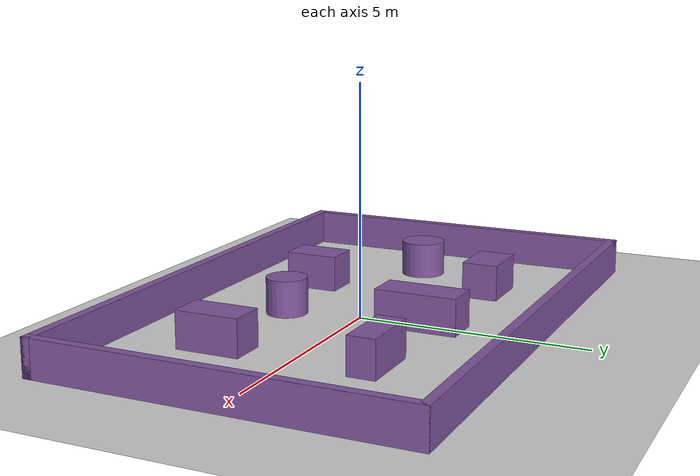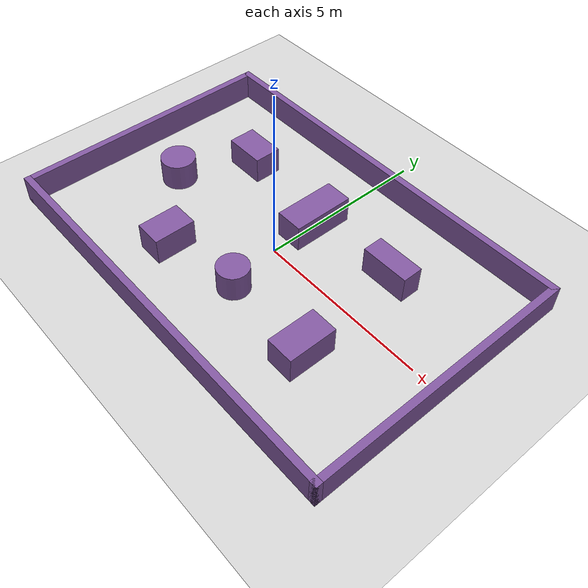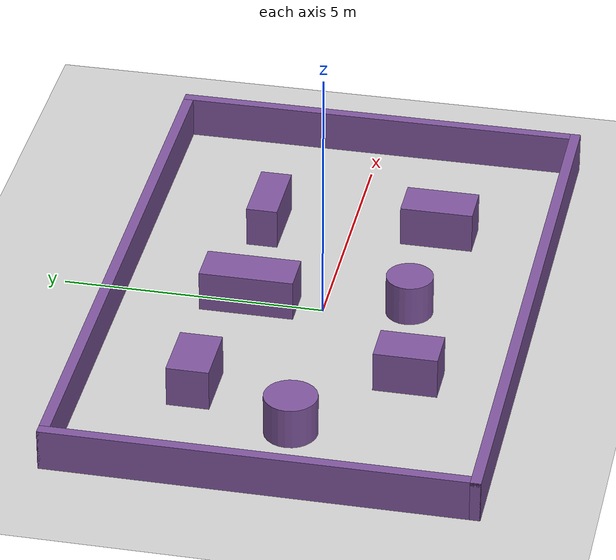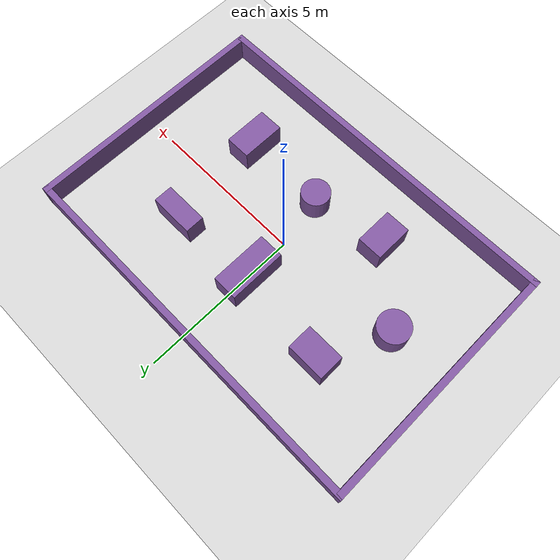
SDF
<?xml version="1.0"?>
<sdf version="1.8">
  <world name="obstacle_course">
    <physics name="accurate_1ms" type="ode">
      <real_time_update_rate>1000.0</real_time_update_rate>
      <max_step_size>0.001</max_step_size>
      <real_time_factor>1.0</real_time_factor>
      <ode>
        <solver>
          <type>quick</type>
          <iters>150</iters>
          <sor>1.4</sor>
          <use_dynamic_moi_rescaling>true</use_dynamic_moi_rescaling>
        </solver>
        <constraints>
          <cfm>0.00001</cfm>
          <erp>0.2</erp>
          <contact_max_correcting_vel>2000.0</contact_max_correcting_vel>
          <contact_surface_layer>0.01</contact_surface_layer>
        </constraints>
      </ode>
    </physics>

    <plugin filename="gz-sim-physics-system"
            name="gz::sim::systems::Physics"/>
    <plugin filename="gz-sim-user-commands-system"
            name="gz::sim::systems::UserCommands"/>
    <plugin filename="gz-sim-scene-broadcaster-system"
            name="gz::sim::systems::SceneBroadcaster"/>
    <plugin filename="gz-sim-sensors-system"
            name="gz::sim::systems::Sensors">
      <render_engine>ogre2</render_engine>
    </plugin>
    <plugin filename="gz-sim-imu-system"
            name="gz::sim::systems::Imu"/>

    <gravity>0 0 -9.8</gravity>
    <scene>
      <ambient>0.7 0.7 0.7 1</ambient>
      <background>0.85 0.9 0.95 1</background>
      <shadows>true</shadows>
    </scene>
    <light name="sun" type="directional">
      <cast_shadows>true</cast_shadows>
      <pose>0 0 10 0 0 0</pose>
      <diffuse>0.9 0.9 0.9 1</diffuse>
      <specular>0.2 0.2 0.2 1</specular>
      <direction>-0.5 0.2 -0.9</direction>
    </light>

    <model name="ground_plane">
      <static>true</static>
      <link name="ground_link">
        <collision name="ground_collision">
          <geometry>
            <plane>
              <normal>0 0 1</normal>
              <size>12 8</size>
            </plane>
          </geometry>
          <surface>
            <friction><ode><mu>1.0</mu><mu2>1.0</mu2></ode></friction>
          </surface>
        </collision>
        <visual name="ground_visual">
          <geometry>
            <plane>
              <normal>0 0 1</normal>
              <size>12 8</size>
            </plane>
          </geometry>
          <material>
            <ambient>0.72 0.72 0.72 1</ambient>
            <diffuse>0.82 0.82 0.82 1</diffuse>
          </material>
        </visual>
      </link>
    </model>

    <model name="arena_geometry">
      <static>true</static>
      <link name="geometry_link">
      <collision name="north_wall_collision">
        <pose>0 3.9 0.4 0 0 0</pose>
        <geometry><box><size>12 0.2 0.8</size></box></geometry>
      </collision>
      <visual name="north_wall_visual">
        <pose>0 3.9 0.4 0 0 0</pose>
        <geometry><box><size>12 0.2 0.8</size></box></geometry>
        <material>
          <ambient>0.5 0.34 0.62 1</ambient>
          <diffuse>0.5 0.34 0.62 1</diffuse>
        </material>
      </visual>
      <collision name="south_wall_collision">
        <pose>0 -3.9 0.4 0 0 0</pose>
        <geometry><box><size>12 0.2 0.8</size></box></geometry>
      </collision>
      <visual name="south_wall_visual">
        <pose>0 -3.9 0.4 0 0 0</pose>
        <geometry><box><size>12 0.2 0.8</size></box></geometry>
        <material>
          <ambient>0.5 0.34 0.62 1</ambient>
          <diffuse>0.5 0.34 0.62 1</diffuse>
        </material>
      </visual>
      <collision name="east_wall_collision">
        <pose>5.9 0 0.4 0 0 0</pose>
        <geometry><box><size>0.2 8 0.8</size></box></geometry>
      </collision>
      <visual name="east_wall_visual">
        <pose>5.9 0 0.4 0 0 0</pose>
        <geometry><box><size>0.2 8 0.8</size></box></geometry>
        <material>
          <ambient>0.5 0.34 0.62 1</ambient>
          <diffuse>0.5 0.34 0.62 1</diffuse>
        </material>
      </visual>
      <collision name="west_wall_collision">
        <pose>-5.9 0 0.4 0 0 0</pose>
        <geometry><box><size>0.2 8 0.8</size></box></geometry>
      </collision>
      <visual name="west_wall_visual">
        <pose>-5.9 0 0.4 0 0 0</pose>
        <geometry><box><size>0.2 8 0.8</size></box></geometry>
        <material>
          <ambient>0.5 0.34 0.62 1</ambient>
          <diffuse>0.5 0.34 0.62 1</diffuse>
        </material>
      </visual>
      <collision name="northwest_block_collision">
        <pose>-3 1.8 0.4 0 0 0</pose>
        <geometry><box><size>1.2 0.8 0.8</size></box></geometry>
      </collision>
      <visual name="northwest_block_visual">
        <pose>-3 1.8 0.4 0 0 0</pose>
        <geometry><box><size>1.2 0.8 0.8</size></box></geometry>
        <material>
          <ambient>0.5 0.34 0.62 1</ambient>
          <diffuse>0.5 0.34 0.62 1</diffuse>
        </material>
      </visual>
      <collision name="southwest_block_collision">
        <pose>-2 -2 0.4 0 0 0</pose>
        <geometry><box><size>0.8 1.2 0.8</size></box></geometry>
      </collision>
      <visual name="southwest_block_visual">
        <pose>-2 -2 0.4 0 0 0</pose>
        <geometry><box><size>0.8 1.2 0.8</size></box></geometry>
        <material>
          <ambient>0.5 0.34 0.62 1</ambient>
          <diffuse>0.5 0.34 0.62 1</diffuse>
        </material>
      </visual>
      <collision name="north_center_block_collision">
        <pose>0 1.4 0.4 0 0 0</pose>
        <geometry><box><size>0.8 1.8 0.8</size></box></geometry>
      </collision>
      <visual name="north_center_block_visual">
        <pose>0 1.4 0.4 0 0 0</pose>
        <geometry><box><size>0.8 1.8 0.8</size></box></geometry>
        <material>
          <ambient>0.5 0.34 0.62 1</ambient>
          <diffuse>0.5 0.34 0.62 1</diffuse>
        </material>
      </visual>
      <collision name="northeast_block_collision">
        <pose>2.7 1.6 0.4 0 0 0</pose>
        <geometry><box><size>1.4 0.6 0.8</size></box></geometry>
      </collision>
      <visual name="northeast_block_visual">
        <pose>2.7 1.6 0.4 0 0 0</pose>
        <geometry><box><size>1.4 0.6 0.8</size></box></geometry>
        <material>
          <ambient>0.5 0.34 0.62 1</ambient>
          <diffuse>0.5 0.34 0.62 1</diffuse>
        </material>
      </visual>
      <collision name="southeast_block_collision">
        <pose>3 -1.7 0.4 0 0 0</pose>
        <geometry><box><size>0.8 1.4 0.8</size></box></geometry>
      </collision>
      <visual name="southeast_block_visual">
        <pose>3 -1.7 0.4 0 0 0</pose>
        <geometry><box><size>0.8 1.4 0.8</size></box></geometry>
        <material>
          <ambient>0.5 0.34 0.62 1</ambient>
          <diffuse>0.5 0.34 0.62 1</diffuse>
        </material>
      </visual>
      <collision name="south_center_pillar_collision">
        <pose>0.3 -1.6 0.4 0 0 0</pose>
        <geometry>
          <cylinder>
            <radius>0.45</radius>
            <length>0.8</length>
          </cylinder>
        </geometry>
      </collision>
      <visual name="south_center_pillar_visual">
        <pose>0.3 -1.6 0.4 0 0 0</pose>
        <geometry>
          <cylinder>
            <radius>0.45</radius>
            <length>0.8</length>
          </cylinder>
        </geometry>
        <material>
          <ambient>0.5 0.34 0.62 1</ambient>
          <diffuse>0.5 0.34 0.62 1</diffuse>
        </material>
      </visual>
      <collision name="west_pillar_collision">
        <pose>-4 -0.2 0.4 0 0 0</pose>
        <geometry>
          <cylinder>
            <radius>0.5</radius>
            <length>0.8</length>
          </cylinder>
        </geometry>
      </collision>
      <visual name="west_pillar_visual">
        <pose>-4 -0.2 0.4 0 0 0</pose>
        <geometry>
          <cylinder>
            <radius>0.5</radius>
            <length>0.8</length>
          </cylinder>
        </geometry>
        <material>
          <ambient>0.5 0.34 0.62 1</ambient>
          <diffuse>0.5 0.34 0.62 1</diffuse>
        </material>
      </visual>
      </link>
    </model>
  </world>
</sdf>
